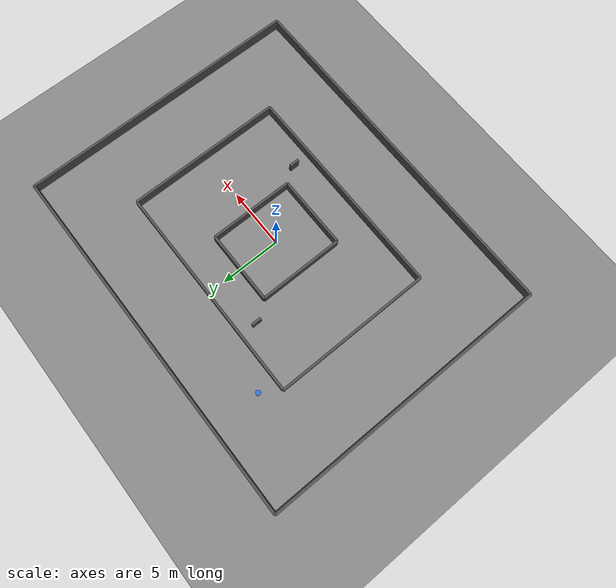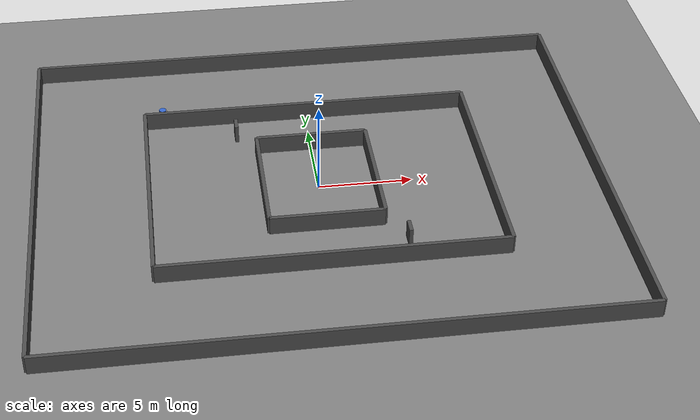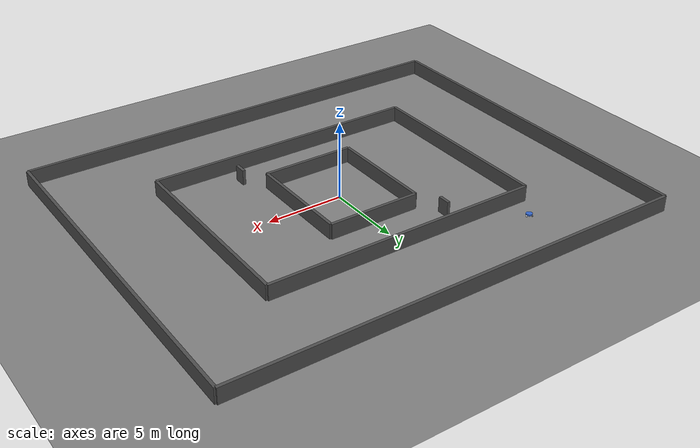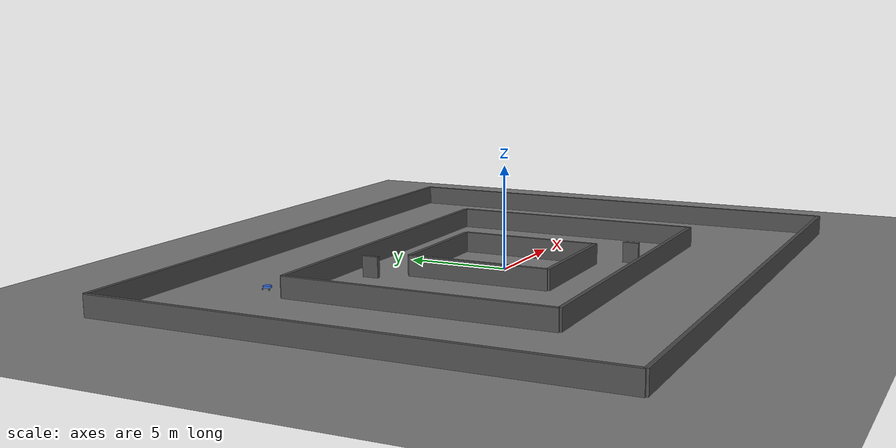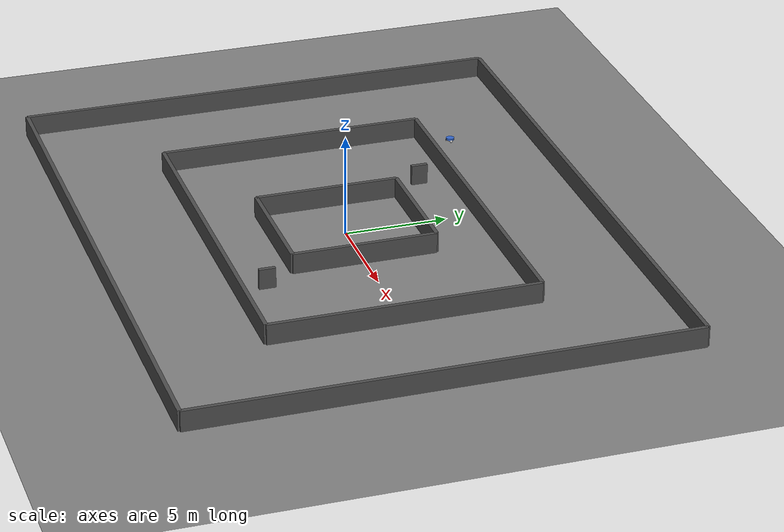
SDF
<?xml version="1.0" ?>
<sdf version="1.9">
  <world name="maze_02">
    <physics name="default" type="ignored">
      <max_step_size>0.001</max_step_size>
      <real_time_factor>1.0</real_time_factor>
    </physics>

    <plugin
      filename="gz-sim-physics-system"
      name="gz::sim::systems::Physics">
    </plugin>
    <plugin
      filename="gz-sim-sensors-system"
      name="gz::sim::systems::Sensors">
      <render_engine>ogre2</render_engine>
    </plugin>
    <plugin
      filename="gz-sim-scene-broadcaster-system"
      name="gz::sim::systems::SceneBroadcaster">
    </plugin>
    <plugin
      filename="gz-sim-user-commands-system"
      name="gz::sim::systems::UserCommands">
    </plugin>

    <scene>
      <ambient>0.4 0.4 0.4 1</ambient>
      <background>0.7 0.7 0.7 1</background>
      <shadows>false</shadows>
    </scene>

    <light name="sun" type="directional">
      <pose>0 0 10 0 0 0</pose>
      <diffuse>0.8 0.8 0.8 1</diffuse>
      <specular>0.2 0.2 0.2 1</specular>
    </light>

    <!-- Ground plane -->
    <model name="ground">
      <static>true</static>
      <link name="link">
        <collision name="collision">
          <geometry>
            <plane>
              <normal>0 0 1</normal>
              <size>40 40</size>
            </plane>
          </geometry>
        </collision>
        <visual name="visual">
          <geometry>
            <plane>
              <normal>0 0 1</normal>
              <size>40 40</size>
            </plane>
          </geometry>
          <material>
            <ambient>0.5 0.5 0.5 1</ambient>
            <diffuse>0.5 0.5 0.5 1</diffuse>
          </material>
        </visual>
      </link>
    </model>

    <!-- Outer border -->
    <model name="border_top">
      <static>true</static>
      <pose>0 12 0.5 0 0 0</pose>
      <link name="wall">
        <collision name="collision">
          <geometry><box><size>30 0.2 1</size></box></geometry>
        </collision>
        <visual name="visual">
          <geometry><box><size>30 0.2 1</size></box></geometry>
          <material><ambient>0.3 0.3 0.3 1</ambient><diffuse>0.3 0.3 0.3 1</diffuse></material>
        </visual>
      </link>
    </model>
    <model name="border_bottom">
      <static>true</static>
      <pose>0 -12 0.5 0 0 0</pose>
      <link name="wall">
        <collision name="collision">
          <geometry><box><size>30 0.2 1</size></box></geometry>
        </collision>
        <visual name="visual">
          <geometry><box><size>30 0.2 1</size></box></geometry>
          <material><ambient>0.3 0.3 0.3 1</ambient><diffuse>0.3 0.3 0.3 1</diffuse></material>
        </visual>
      </link>
    </model>
    <model name="border_left">
      <static>true</static>
      <pose>-15 0 0.5 0 0 1.5708</pose>
      <link name="wall">
        <collision name="collision">
          <geometry><box><size>24 0.2 1</size></box></geometry>
        </collision>
        <visual name="visual">
          <geometry><box><size>24 0.2 1</size></box></geometry>
          <material><ambient>0.3 0.3 0.3 1</ambient><diffuse>0.3 0.3 0.3 1</diffuse></material>
        </visual>
      </link>
    </model>
    <model name="border_right">
      <static>true</static>
      <pose>15 0 0.5 0 0 1.5708</pose>
      <link name="wall">
        <collision name="collision">
          <geometry><box><size>24 0.2 1</size></box></geometry>
        </collision>
        <visual name="visual">
          <geometry><box><size>24 0.2 1</size></box></geometry>
          <material><ambient>0.3 0.3 0.3 1</ambient><diffuse>0.3 0.3 0.3 1</diffuse></material>
        </visual>
      </link>
    </model>

    <!-- Outer ring -->
    <model name="ring_top">
      <static>true</static>
      <pose>0 6.5 0.5 0 0 0</pose>
      <link name="wall">
        <collision name="collision">
          <geometry><box><size>18 0.2 1</size></box></geometry>
        </collision>
        <visual name="visual">
          <geometry><box><size>18 0.2 1</size></box></geometry>
          <material><ambient>0.3 0.3 0.3 1</ambient><diffuse>0.3 0.3 0.3 1</diffuse></material>
        </visual>
      </link>
    </model>
    <model name="ring_bottom">
      <static>true</static>
      <pose>0 -6.5 0.5 0 0 0</pose>
      <link name="wall">
        <collision name="collision">
          <geometry><box><size>18 0.2 1</size></box></geometry>
        </collision>
        <visual name="visual">
          <geometry><box><size>18 0.2 1</size></box></geometry>
          <material><ambient>0.3 0.3 0.3 1</ambient><diffuse>0.3 0.3 0.3 1</diffuse></material>
        </visual>
      </link>
    </model>
    <model name="ring_left">
      <static>true</static>
      <pose>-9 0 0.5 0 0 1.5708</pose>
      <link name="wall">
        <collision name="collision">
          <geometry><box><size>13 0.2 1</size></box></geometry>
        </collision>
        <visual name="visual">
          <geometry><box><size>13 0.2 1</size></box></geometry>
          <material><ambient>0.3 0.3 0.3 1</ambient><diffuse>0.3 0.3 0.3 1</diffuse></material>
        </visual>
      </link>
    </model>
    <model name="ring_right">
      <static>true</static>
      <pose>9 0 0.5 0 0 1.5708</pose>
      <link name="wall">
        <collision name="collision">
          <geometry><box><size>13 0.2 1</size></box></geometry>
        </collision>
        <visual name="visual">
          <geometry><box><size>13 0.2 1</size></box></geometry>
          <material><ambient>0.3 0.3 0.3 1</ambient><diffuse>0.3 0.3 0.3 1</diffuse></material>
        </visual>
      </link>
    </model>

    <!-- Inner ring -->
    <model name="inner_top">
      <static>true</static>
      <pose>0 3.5 0.5 0 0 0</pose>
      <link name="wall">
        <collision name="collision">
          <geometry><box><size>6 0.2 1</size></box></geometry>
        </collision>
        <visual name="visual">
          <geometry><box><size>6 0.2 1</size></box></geometry>
          <material><ambient>0.3 0.3 0.3 1</ambient><diffuse>0.3 0.3 0.3 1</diffuse></material>
        </visual>
      </link>
    </model>
    <model name="inner_bottom">
      <static>true</static>
      <pose>0 -3.5 0.5 0 0 0</pose>
      <link name="wall">
        <collision name="collision">
          <geometry><box><size>6 0.2 1</size></box></geometry>
        </collision>
        <visual name="visual">
          <geometry><box><size>6 0.2 1</size></box></geometry>
          <material><ambient>0.3 0.3 0.3 1</ambient><diffuse>0.3 0.3 0.3 1</diffuse></material>
        </visual>
      </link>
    </model>
    <model name="inner_left">
      <static>true</static>
      <pose>-3 0 0.5 0 0 1.5708</pose>
      <link name="wall">
        <collision name="collision">
          <geometry><box><size>7 0.2 1</size></box></geometry>
        </collision>
        <visual name="visual">
          <geometry><box><size>7 0.2 1</size></box></geometry>
          <material><ambient>0.3 0.3 0.3 1</ambient><diffuse>0.3 0.3 0.3 1</diffuse></material>
        </visual>
      </link>
    </model>
    <model name="inner_right">
      <static>true</static>
      <pose>3 0 0.5 0 0 1.5708</pose>
      <link name="wall">
        <collision name="collision">
          <geometry><box><size>7 0.2 1</size></box></geometry>
        </collision>
        <visual name="visual">
          <geometry><box><size>7 0.2 1</size></box></geometry>
          <material><ambient>0.3 0.3 0.3 1</ambient><diffuse>0.3 0.3 0.3 1</diffuse></material>
        </visual>
      </link>
    </model>

    <!-- Gap blocks -->
    <model name="gap_block_1">
      <static>true</static>
      <pose>-4 5 0.5 0 0 0</pose>
      <link name="wall">
        <collision name="collision">
          <geometry><box><size>0.2 0.8 1</size></box></geometry>
        </collision>
        <visual name="visual">
          <geometry><box><size>0.2 0.8 1</size></box></geometry>
          <material><ambient>0.3 0.3 0.3 1</ambient><diffuse>0.3 0.3 0.3 1</diffuse></material>
        </visual>
      </link>
    </model>
    <model name="gap_block_2">
      <static>true</static>
      <pose>4 -5 0.5 0 0 0</pose>
      <link name="wall">
        <collision name="collision">
          <geometry><box><size>0.2 0.8 1</size></box></geometry>
        </collision>
        <visual name="visual">
          <geometry><box><size>0.2 0.8 1</size></box></geometry>
          <material><ambient>0.3 0.3 0.3 1</ambient><diffuse>0.3 0.3 0.3 1</diffuse></material>
        </visual>
      </link>
    </model>

    <!-- Spawn robot -->
    <include>
      <uri>model://simple_robot</uri>
      <pose>-8 8 0.05 0 0 0</pose>
    </include>
  </world>
</sdf>

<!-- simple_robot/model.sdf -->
<sdf version="1.9">
  <model name="simple_robot">
    <pose>0 0 0.05 0 0 0</pose>

    <!-- ─── Chassis ────────────────────────────────── -->
    <link name="chassis">
      <pose>0 0 0.08 0 0 0</pose>
      <inertial>
        <mass>2.0</mass>
        <inertia>
          <ixx>0.01</ixx>
          <ixy>0</ixy>
          <ixz>0</ixz>
          <iyy>0.01</iyy>
          <iyz>0</iyz>
          <izz>0.02</izz>
        </inertia>
      </inertial>
      <collision name="collision">
        <geometry>
          <cylinder>
            <radius>0.20</radius>
            <length>0.10</length>
          </cylinder>
        </geometry>
      </collision>
      <visual name="visual">
        <geometry>
          <cylinder>
            <radius>0.20</radius>
            <length>0.10</length>
          </cylinder>
        </geometry>
        <material>
          <ambient>0.2 0.4 0.8 1</ambient>
          <diffuse>0.2 0.4 0.8 1</diffuse>
        </material>
      </visual>
      <sensor name="lidar" type="gpu_lidar">
        <pose>0 0 0.04 0 0 0</pose>
        <always_on>1</always_on>
        <update_rate>1</update_rate>
        <visualize>false</visualize>
        <topic>/scan</topic>
        <gz_frame_id>laser</gz_frame_id>
        <lidar>
          <scan>
            <horizontal>
              <samples>720</samples>
              <resolution>1</resolution>
              <min_angle>-3.14159</min_angle>
              <max_angle>3.14159</max_angle>
            </horizontal>
          </scan>
          <range>
            <min>0.1</min>
            <max>30.0</max>
            <resolution>0.01</resolution>
          </range>
          <noise>
            <type>none</type>
          </noise>
        </lidar>
      </sensor>
    </link>

    <!-- ─── Left wheel ─────────────────────────────── -->
    <link name="left_wheel">
      <pose>-0.12 0.18 -0.03 1.5708 0 0</pose>
      <inertial>
        <mass>0.2</mass>
        <inertia>
          <ixx>0.0002</ixx>
          <ixy>0</ixy>
          <ixz>0</ixz>
          <iyy>0.0002</iyy>
          <iyz>0</iyz>
          <izz>0.0003</izz>
        </inertia>
      </inertial>
      <collision name="collision">
        <geometry>
          <cylinder>
            <radius>0.04</radius>
            <length>0.03</length>
          </cylinder>
        </geometry>
      </collision>
      <visual name="visual">
        <geometry>
          <cylinder>
            <radius>0.04</radius>
            <length>0.03</length>
          </cylinder>
        </geometry>
        <material>
          <ambient>0.1 0.1 0.1 1</ambient>
          <diffuse>0.1 0.1 0.1 1</diffuse>
        </material>
      </visual>
    </link>

    <!-- ─── Right wheel ────────────────────────────── -->
    <link name="right_wheel">
      <pose>-0.12 -0.18 -0.03 1.5708 0 0</pose>
      <inertial>
        <mass>0.2</mass>
        <inertia>
          <ixx>0.0002</ixx>
          <ixy>0</ixy>
          <ixz>0</ixz>
          <iyy>0.0002</iyy>
          <iyz>0</iyz>
          <izz>0.0003</izz>
        </inertia>
      </inertial>
      <collision name="collision">
        <geometry>
          <cylinder>
            <radius>0.04</radius>
            <length>0.03</length>
          </cylinder>
        </geometry>
      </collision>
      <visual name="visual">
        <geometry>
          <cylinder>
            <radius>0.04</radius>
            <length>0.03</length>
          </cylinder>
        </geometry>
        <material>
          <ambient>0.1 0.1 0.1 1</ambient>
          <diffuse>0.1 0.1 0.1 1</diffuse>
        </material>
      </visual>
    </link>

    <!-- ─── Caster (passive ball) ──────────────────── -->
    <link name="caster">
      <pose>0.18 0 0 0 0 0</pose>
      <inertial>
        <mass>0.05</mass>
        <inertia>
          <ixx>0.0001</ixx>
          <ixy>0</ixy>
          <ixz>0</ixz>
          <iyy>0.0001</iyy>
          <iyz>0</iyz>
          <izz>0.0001</izz>
        </inertia>
      </inertial>
      <collision name="collision">
        <geometry>
          <sphere>
            <radius>0.07</radius>
          </sphere>
        </geometry>
      </collision>
      <visual name="visual">
        <geometry>
          <sphere>
            <radius>0.07</radius>
          </sphere>
        </geometry>
        <material>
          <ambient>0.8 0.8 0.8 1</ambient>
          <diffuse>0.8 0.8 0.8 1</diffuse>
        </material>
      </visual>
    </link>

    <!-- ─── Joints ─────────────────────────────────── -->

    <joint name="left_wheel_joint" type="revolute">
      <parent>chassis</parent>
      <child>left_wheel</child>
      <axis>
        <xyz>0 0 -1</xyz>
        <limit>
          <lower>-1e16</lower>
          <upper>1e16</upper>
        </limit>
      </axis>
    </joint>

    <joint name="right_wheel_joint" type="revolute">
      <parent>chassis</parent>
      <child>right_wheel</child>
      <axis>
        <xyz>0 0 -1</xyz>
        <limit>
          <lower>-1e16</lower>
          <upper>1e16</upper>
        </limit>
      </axis>
    </joint>

    <joint name="caster_joint" type="ball">
      <parent>chassis</parent>
      <child>caster</child>
    </joint>

    <!-- ─── Differential drive plugin ──────────────── -->
    <plugin
      filename="gz-sim-diff-drive-system"
      name="gz::sim::systems::DiffDrive">
      <left_joint>left_wheel_joint</left_joint>
      <right_joint>right_wheel_joint</right_joint>
      <wheel_separation>0.36</wheel_separation>
      <wheel_radius>0.04</wheel_radius>
      <odom_publish_frequency>50</odom_publish_frequency>
      <topic>/cmd_vel</topic>
      <odom_topic>/odom</odom_topic>
    </plugin>

    <!-- ─── Pose publisher plugin (true ground-truth pose) ─── -->
    <plugin
      filename="gz-sim-pose-publisher-system"
      name="gz::sim::systems::PosePublisher">
      <publish_link_pose>false</publish_link_pose>
      <publish_model_pose>true</publish_model_pose>
      <publish_nested_model_pose>false</publish_nested_model_pose>
      <update_frequency>50</update_frequency>
    </plugin>

  </model>
</sdf>
